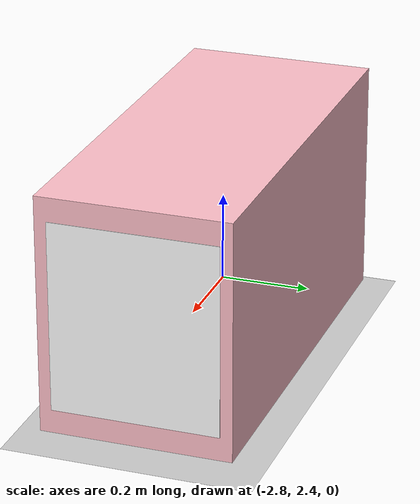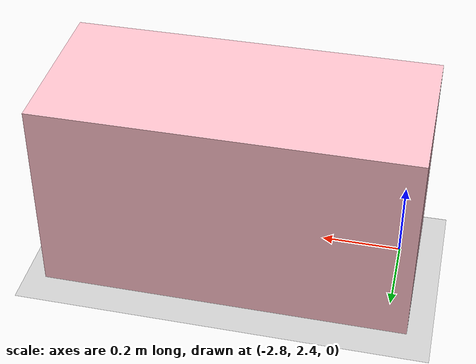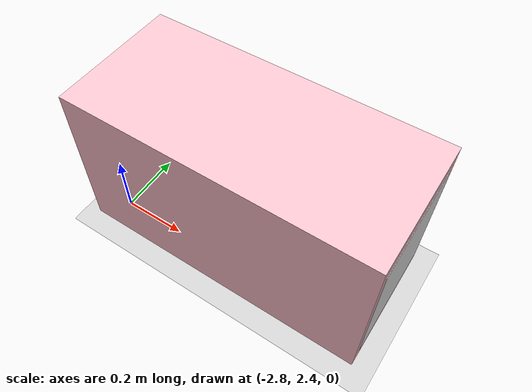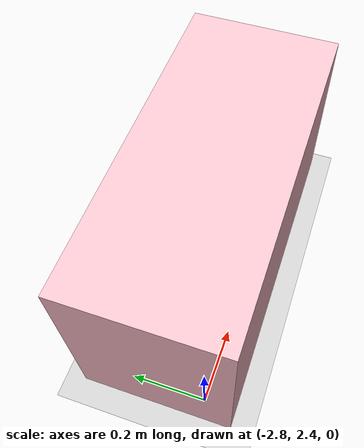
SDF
<sdf version="1.9">
 <world name="pig_pen_8units_world">
  <model name="ground_plane">
   <static>true</static>
   <link name="link">
    <collision name="collision">
     <geometry><plane><normal>0 0 1</normal><size>20 20</size></plane></geometry>
     <surface><friction><ode><mu>1.0</mu><mu2>1.0</mu2></ode></friction></surface>
    </collision>
    <visual name="visual">
     <geometry><plane><normal>0 0 1</normal><size>20 20</size></plane></geometry>
     <material>
      <ambient>0.8 0.8 0.8 1</ambient>
      <diffuse>0.8 0.8 0.8 1</diffuse>
      <specular>0.2 0.2 0.2 1</specular>
     </material>
    </visual>
   </link>
  </model>
  <include><uri>model://farm_pig</uri><name>pig2</name><pose>-2.4 2.515 0.27 0 0 0</pose></include>
 </world>
</sdf>
